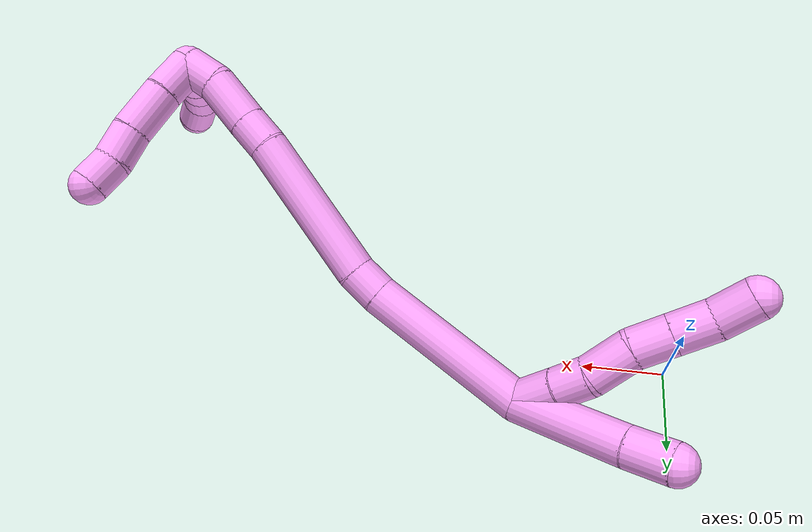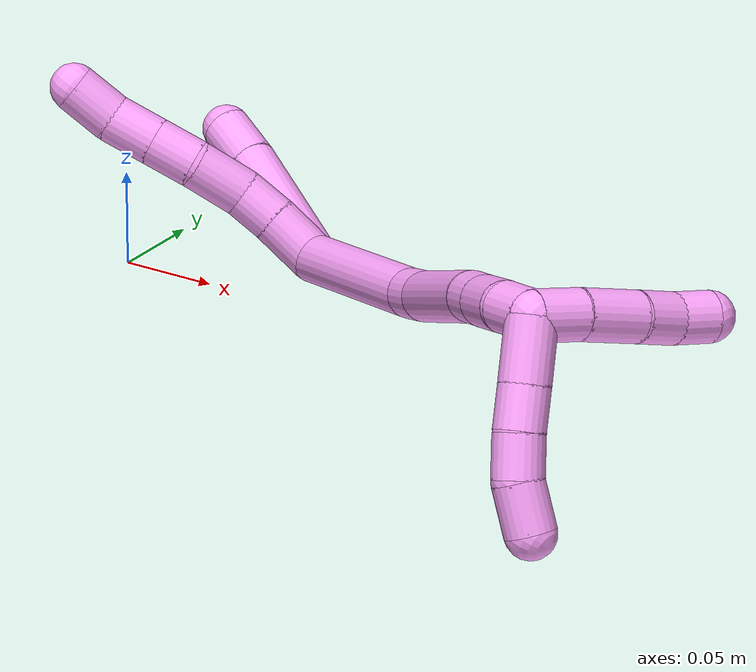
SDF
<sdf version="1.7">
 <world name="default">
  <model name="4">
   <static>0</static>
   <link name="4">
    <collision name="collision-cylinder-e_1_2_8">
     <pose>0.004533 -0.002907 -0.012921 2.92027 0.329762 1.96403</pose>
     <geometry><cylinder><radius>0.0125</radius><length>0.027997</length></cylinder></geometry>
     <surface>
      <friction><ode><mu>1.16</mu><mu2>1.16</mu2><slip1>0</slip1><slip2>0</slip2></ode></friction>
      <contact><ode><kp>1e+06</kp><kd>1</kd><max_vel>0</max_vel><min_depth>0.001</min_depth></ode></contact>
     </surface>
    </collision>
    <visual name="visual-cylinder-e_1_2_8">
     <pose>0.004533 -0.002907 -0.012921 2.92027 0.329762 1.96403</pose>
     <geometry><cylinder><radius>0.0125</radius><length>0.027997</length></cylinder></geometry>
     <material><ambient>1 0.65098 0.996078 1</ambient></material>
    </visual>
    <collision name="collision-cylinder-e_2_8_9">
     <pose>0.012837 -0.007317 -0.035481 2.98695 0.368869 2.35436</pose>
     <geometry><cylinder><radius>0.0125</radius><length>0.020918</length></cylinder></geometry>
     <surface>
      <friction><ode><mu>1.16</mu><mu2>1.16</mu2><slip1>0</slip1><slip2>0</slip2></ode></friction>
      <contact><ode><kp>1e+06</kp><kd>1</kd><max_vel>0</max_vel><min_depth>0.001</min_depth></ode></contact>
     </surface>
    </collision>
    <visual name="visual-cylinder-e_2_8_9">
     <pose>0.012837 -0.007317 -0.035481 2.98695 0.368869 2.35436</pose>
     <geometry><cylinder><radius>0.0125</radius><length>0.020918</length></cylinder></geometry>
     <material><ambient>1 0.65098 0.996078 1</ambient></material>
    </visual>
    <collision name="collision-cylinder-e_3_9_10">
     <pose>0.024825 -0.00986 -0.056776 3.0526 0.61221 2.86165</pose>
     <geometry><cylinder><radius>0.0125</radius><length>0.028597</length></cylinder></geometry>
     <surface>
      <friction><ode><mu>1.16</mu><mu2>1.16</mu2><slip1>0</slip1><slip2>0</slip2></ode></friction>
      <contact><ode><kp>1e+06</kp><kd>1</kd><max_vel>0</max_vel><min_depth>0.001</min_depth></ode></contact>
     </surface>
    </collision>
    <visual name="visual-cylinder-e_3_9_10">
     <pose>0.024825 -0.00986 -0.056776 3.0526 0.61221 2.86165</pose>
     <geometry><cylinder><radius>0.0125</radius><length>0.028597</length></cylinder></geometry>
     <material><ambient>1 0.65098 0.996078 1</ambient></material>
    </visual>
    <collision name="collision-cylinder-e_4_10_11">
     <pose>0.037685 -0.010411 -0.079124 -3.09589 0.409239 -2.92223</pose>
     <geometry><cylinder><radius>0.0125</radius><length>0.023335</length></cylinder></geometry>
     <surface>
      <friction><ode><mu>1.16</mu><mu2>1.16</mu2><slip1>0</slip1><slip2>0</slip2></ode></friction>
      <contact><ode><kp>1e+06</kp><kd>1</kd><max_vel>0</max_vel><min_depth>0.001</min_depth></ode></contact>
     </surface>
    </collision>
    <visual name="visual-cylinder-e_4_10_11">
     <pose>0.037685 -0.010411 -0.079124 -3.09589 0.409239 -2.92223</pose>
     <geometry><cylinder><radius>0.0125</radius><length>0.023335</length></cylinder></geometry>
     <material><ambient>1 0.65098 0.996078 1</ambient></material>
    </visual>
    <collision name="collision-cylinder-e_5_11_12">
     <pose>0.04721 -0.009406 -0.101048 -3.09569 0.409714 -2.92152</pose>
     <geometry><cylinder><radius>0.0125</radius><length>0.024513</length></cylinder></geometry>
     <surface>
      <friction><ode><mu>1.16</mu><mu2>1.16</mu2><slip1>0</slip1><slip2>0</slip2></ode></friction>
      <contact><ode><kp>1e+06</kp><kd>1</kd><max_vel>0</max_vel><min_depth>0.001</min_depth></ode></contact>
     </surface>
    </collision>
    <visual name="visual-cylinder-e_5_11_12">
     <pose>0.04721 -0.009406 -0.101048 -3.09569 0.409714 -2.92152</pose>
     <geometry><cylinder><radius>0.0125</radius><length>0.024513</length></cylinder></geometry>
     <material><ambient>1 0.65098 0.996078 1</ambient></material>
    </visual>
    <collision name="collision-cylinder-e_6_12_6">
     <pose>0.05784 -0.010981 -0.122972 2.9485 0.485345 2.39575</pose>
     <geometry><cylinder><radius>0.0125</radius><length>0.024639</length></cylinder></geometry>
     <surface>
      <friction><ode><mu>1.16</mu><mu2>1.16</mu2><slip1>0</slip1><slip2>0</slip2></ode></friction>
      <contact><ode><kp>1e+06</kp><kd>1</kd><max_vel>0</max_vel><min_depth>0.001</min_depth></ode></contact>
     </surface>
    </collision>
    <visual name="visual-cylinder-e_6_12_6">
     <pose>0.05784 -0.010981 -0.122972 2.9485 0.485345 2.39575</pose>
     <geometry><cylinder><radius>0.0125</radius><length>0.024639</length></cylinder></geometry>
     <material><ambient>1 0.65098 0.996078 1</ambient></material>
    </visual>
    <collision name="collision-cylinder-e_1_2_13">
     <pose>-0.010612 -0.005169 -0.034504 2.99289 -0.295284 -2.21292</pose>
     <geometry><cylinder><radius>0.0125</radius><length>0.072934</length></cylinder></geometry>
     <surface>
      <friction><ode><mu>1.16</mu><mu2>1.16</mu2><slip1>0</slip1><slip2>0</slip2></ode></friction>
      <contact><ode><kp>1e+06</kp><kd>1</kd><max_vel>0</max_vel><min_depth>0.001</min_depth></ode></contact>
     </surface>
    </collision>
    <visual name="visual-cylinder-e_1_2_13">
     <pose>-0.010612 -0.005169 -0.034504 2.99289 -0.295284 -2.21292</pose>
     <geometry><cylinder><radius>0.0125</radius><length>0.072934</length></cylinder></geometry>
     <material><ambient>1 0.65098 0.996078 1</ambient></material>
    </visual>
    <collision name="collision-cylinder-e_2_13_5">
     <pose>-0.024615 -0.01157 -0.082051 3.04742 -0.253234 -2.43255</pose>
     <geometry><cylinder><radius>0.0125</radius><length>0.027066</length></cylinder></geometry>
     <surface>
      <friction><ode><mu>1.16</mu><mu2>1.16</mu2><slip1>0</slip1><slip2>0</slip2></ode></friction>
      <contact><ode><kp>1e+06</kp><kd>1</kd><max_vel>0</max_vel><min_depth>0.001</min_depth></ode></contact>
     </surface>
    </collision>
    <visual name="visual-cylinder-e_2_13_5">
     <pose>-0.024615 -0.01157 -0.082051 3.04742 -0.253234 -2.43255</pose>
     <geometry><cylinder><radius>0.0125</radius><length>0.027066</length></cylinder></geometry>
     <material><ambient>1 0.65098 0.996078 1</ambient></material>
    </visual>
    <collision name="collision-cylinder-e_1_2_14">
     <pose>0.027021 -0.01998 0.040844 0.454951 0.536207 0.127013</pose>
     <geometry><cylinder><radius>0.0125</radius><length>0.105783</length></cylinder></geometry>
     <surface>
      <friction><ode><mu>1.16</mu><mu2>1.16</mu2><slip1>0</slip1><slip2>0</slip2></ode></friction>
      <contact><ode><kp>1e+06</kp><kd>1</kd><max_vel>0</max_vel><min_depth>0.001</min_depth></ode></contact>
     </surface>
    </collision>
    <visual name="visual-cylinder-e_1_2_14">
     <pose>0.027021 -0.01998 0.040844 0.454951 0.536207 0.127013</pose>
     <geometry><cylinder><radius>0.0125</radius><length>0.105783</length></cylinder></geometry>
     <material><ambient>1 0.65098 0.996078 1</ambient></material>
    </visual>
    <collision name="collision-cylinder-e_2_14_15">
     <pose>0.060087 -0.044228 0.088544 0.55677 0.642414 0.189622</pose>
     <geometry><cylinder><radius>0.0125</radius><length>0.020177</length></cylinder></geometry>
     <surface>
      <friction><ode><mu>1.16</mu><mu2>1.16</mu2><slip1>0</slip1><slip2>0</slip2></ode></friction>
      <contact><ode><kp>1e+06</kp><kd>1</kd><max_vel>0</max_vel><min_depth>0.001</min_depth></ode></contact>
     </surface>
    </collision>
    <visual name="visual-cylinder-e_2_14_15">
     <pose>0.060087 -0.044228 0.088544 0.55677 0.642414 0.189622</pose>
     <geometry><cylinder><radius>0.0125</radius><length>0.020177</length></cylinder></geometry>
     <material><ambient>1 0.65098 0.996078 1</ambient></material>
    </visual>
    <collision name="collision-cylinder-e_3_15_16">
     <pose>0.101109 -0.069502 0.121954 0.669296 0.801696 0.292622</pose>
     <geometry><cylinder><radius>0.0125</radius><length>0.09736</length></cylinder></geometry>
     <surface>
      <friction><ode><mu>1.16</mu><mu2>1.16</mu2><slip1>0</slip1><slip2>0</slip2></ode></friction>
      <contact><ode><kp>1e+06</kp><kd>1</kd><max_vel>0</max_vel><min_depth>0.001</min_depth></ode></contact>
     </surface>
    </collision>
    <visual name="visual-cylinder-e_3_15_16">
     <pose>0.101109 -0.069502 0.121954 0.669296 0.801696 0.292622</pose>
     <geometry><cylinder><radius>0.0125</radius><length>0.09736</length></cylinder></geometry>
     <material><ambient>1 0.65098 0.996078 1</ambient></material>
    </visual>
    <collision name="collision-cylinder-e_4_16_17">
     <pose>0.143026 -0.094445 0.15519 0.532429 0.729705 0.207559</pose>
     <geometry><cylinder><radius>0.0125</radius><length>0.020815</length></cylinder></geometry>
     <surface>
      <friction><ode><mu>1.16</mu><mu2>1.16</mu2><slip1>0</slip1><slip2>0</slip2></ode></friction>
      <contact><ode><kp>1e+06</kp><kd>1</kd><max_vel>0</max_vel><min_depth>0.001</min_depth></ode></contact>
     </surface>
    </collision>
    <visual name="visual-cylinder-e_4_16_17">
     <pose>0.143026 -0.094445 0.15519 0.532429 0.729705 0.207559</pose>
     <geometry><cylinder><radius>0.0125</radius><length>0.020815</length></cylinder></geometry>
     <material><ambient>1 0.65098 0.996078 1</ambient></material>
    </visual>
    <collision name="collision-cylinder-e_5_17_18">
     <pose>0.161309 -0.104762 0.172113 0.557108 0.754693 0.225734</pose>
     <geometry><cylinder><radius>0.0125</radius><length>0.033122</length></cylinder></geometry>
     <surface>
      <friction><ode><mu>1.16</mu><mu2>1.16</mu2><slip1>0</slip1><slip2>0</slip2></ode></friction>
      <contact><ode><kp>1e+06</kp><kd>1</kd><max_vel>0</max_vel><min_depth>0.001</min_depth></ode></contact>
     </surface>
    </collision>
    <visual name="visual-cylinder-e_5_17_18">
     <pose>0.161309 -0.104762 0.172113 0.557108 0.754693 0.225734</pose>
     <geometry><cylinder><radius>0.0125</radius><length>0.033122</length></cylinder></geometry>
     <material><ambient>1 0.65098 0.996078 1</ambient></material>
    </visual>
    <collision name="collision-cylinder-e_6_18_1">
     <pose>0.17784 -0.115512 0.191482 0.446592 0.473451 0.109457</pose>
     <geometry><cylinder><radius>0.0125</radius><length>0.022743</length></cylinder></geometry>
     <surface>
      <friction><ode><mu>1.16</mu><mu2>1.16</mu2><slip1>0</slip1><slip2>0</slip2></ode></friction>
      <contact><ode><kp>1e+06</kp><kd>1</kd><max_vel>0</max_vel><min_depth>0.001</min_depth></ode></contact>
     </surface>
    </collision>
    <visual name="visual-cylinder-e_6_18_1">
     <pose>0.17784 -0.115512 0.191482 0.446592 0.473451 0.109457</pose>
     <geometry><cylinder><radius>0.0125</radius><length>0.022743</length></cylinder></geometry>
     <material><ambient>1 0.65098 0.996078 1</ambient></material>
    </visual>
    <collision name="collision-cylinder-e_1_1_19">
     <pose>0.185405 -0.106631 0.208993 -1.00672 0.150677 -0.083084</pose>
     <geometry><cylinder><radius>0.0125</radius><length>0.031722</length></cylinder></geometry>
     <surface>
      <friction><ode><mu>1.16</mu><mu2>1.16</mu2><slip1>0</slip1><slip2>0</slip2></ode></friction>
      <contact><ode><kp>1e+06</kp><kd>1</kd><max_vel>0</max_vel><min_depth>0.001</min_depth></ode></contact>
     </surface>
    </collision>
    <visual name="visual-cylinder-e_1_1_19">
     <pose>0.185405 -0.106631 0.208993 -1.00672 0.150677 -0.083084</pose>
     <geometry><cylinder><radius>0.0125</radius><length>0.031722</length></cylinder></geometry>
     <material><ambient>1 0.65098 0.996078 1</ambient></material>
    </visual>
    <collision name="collision-cylinder-e_2_19_20">
     <pose>0.189705 -0.084397 0.22316 -0.998772 0.177723 -0.097129</pose>
     <geometry><cylinder><radius>0.0125</radius><length>0.021706</length></cylinder></geometry>
     <surface>
      <friction><ode><mu>1.16</mu><mu2>1.16</mu2><slip1>0</slip1><slip2>0</slip2></ode></friction>
      <contact><ode><kp>1e+06</kp><kd>1</kd><max_vel>0</max_vel><min_depth>0.001</min_depth></ode></contact>
     </surface>
    </collision>
    <visual name="visual-cylinder-e_2_19_20">
     <pose>0.189705 -0.084397 0.22316 -0.998772 0.177723 -0.097129</pose>
     <geometry><cylinder><radius>0.0125</radius><length>0.021706</length></cylinder></geometry>
     <material><ambient>1 0.65098 0.996078 1</ambient></material>
    </visual>
    <collision name="collision-cylinder-e_3_20_21">
     <pose>0.192525 -0.066526 0.235262 -0.95279 0.08242 -0.042549</pose>
     <geometry><cylinder><radius>0.0125</radius><length>0.021889</length></cylinder></geometry>
     <surface>
      <friction><ode><mu>1.16</mu><mu2>1.16</mu2><slip1>0</slip1><slip2>0</slip2></ode></friction>
      <contact><ode><kp>1e+06</kp><kd>1</kd><max_vel>0</max_vel><min_depth>0.001</min_depth></ode></contact>
     </surface>
    </collision>
    <visual name="visual-cylinder-e_3_20_21">
     <pose>0.192525 -0.066526 0.235262 -0.95279 0.08242 -0.042549</pose>
     <geometry><cylinder><radius>0.0125</radius><length>0.021889</length></cylinder></geometry>
     <material><ambient>1 0.65098 0.996078 1</ambient></material>
    </visual>
    <collision name="collision-cylinder-e_4_21_4">
     <pose>0.191684 -0.049079 0.250302 -0.775962 -0.141594 0.05795</pose>
     <geometry><cylinder><radius>0.0125</radius><length>0.024683</length></cylinder></geometry>
     <surface>
      <friction><ode><mu>1.16</mu><mu2>1.16</mu2><slip1>0</slip1><slip2>0</slip2></ode></friction>
      <contact><ode><kp>1e+06</kp><kd>1</kd><max_vel>0</max_vel><min_depth>0.001</min_depth></ode></contact>
     </surface>
    </collision>
    <visual name="visual-cylinder-e_4_21_4">
     <pose>0.191684 -0.049079 0.250302 -0.775962 -0.141594 0.05795</pose>
     <geometry><cylinder><radius>0.0125</radius><length>0.024683</length></cylinder></geometry>
     <material><ambient>1 0.65098 0.996078 1</ambient></material>
    </visual>
    <collision name="collision-cylinder-e_1_1_22">
     <pose>0.171905 -0.123241 0.20551 0.600816 -1.08013 -0.367257</pose>
     <geometry><cylinder><radius>0.0125</radius><length>0.025214</length></cylinder></geometry>
     <surface>
      <friction><ode><mu>1.16</mu><mu2>1.16</mu2><slip1>0</slip1><slip2>0</slip2></ode></friction>
      <contact><ode><kp>1e+06</kp><kd>1</kd><max_vel>0</max_vel><min_depth>0.001</min_depth></ode></contact>
     </surface>
    </collision>
    <visual name="visual-cylinder-e_1_1_22">
     <pose>0.171905 -0.123241 0.20551 0.600816 -1.08013 -0.367257</pose>
     <geometry><cylinder><radius>0.0125</radius><length>0.025214</length></cylinder></geometry>
     <material><ambient>1 0.65098 0.996078 1</ambient></material>
    </visual>
    <collision name="collision-cylinder-e_2_22_23">
     <pose>0.146414 -0.129662 0.216648 0.456362 -1.12041 -0.289286</pose>
     <geometry><cylinder><radius>0.0125</radius><length>0.031927</length></cylinder></geometry>
     <surface>
      <friction><ode><mu>1.16</mu><mu2>1.16</mu2><slip1>0</slip1><slip2>0</slip2></ode></friction>
      <contact><ode><kp>1e+06</kp><kd>1</kd><max_vel>0</max_vel><min_depth>0.001</min_depth></ode></contact>
     </surface>
    </collision>
    <visual name="visual-cylinder-e_2_22_23">
     <pose>0.146414 -0.129662 0.216648 0.456362 -1.12041 -0.289286</pose>
     <geometry><cylinder><radius>0.0125</radius><length>0.031927</length></cylinder></geometry>
     <material><ambient>1 0.65098 0.996078 1</ambient></material>
    </visual>
    <collision name="collision-cylinder-e_3_23_24">
     <pose>0.121279 -0.134045 0.226214 0.377706 -1.24963 -0.273962</pose>
     <geometry><cylinder><radius>0.0125</radius><length>0.022688</length></cylinder></geometry>
     <surface>
      <friction><ode><mu>1.16</mu><mu2>1.16</mu2><slip1>0</slip1><slip2>0</slip2></ode></friction>
      <contact><ode><kp>1e+06</kp><kd>1</kd><max_vel>0</max_vel><min_depth>0.001</min_depth></ode></contact>
     </surface>
    </collision>
    <visual name="visual-cylinder-e_3_23_24">
     <pose>0.121279 -0.134045 0.226214 0.377706 -1.24963 -0.273962</pose>
     <geometry><cylinder><radius>0.0125</radius><length>0.022688</length></cylinder></geometry>
     <material><ambient>1 0.65098 0.996078 1</ambient></material>
    </visual>
    <collision name="collision-cylinder-e_4_24_3">
     <pose>0.101749 -0.138325 0.23356 0.634951 -1.05333 -0.377564</pose>
     <geometry><cylinder><radius>0.0125</radius><length>0.020172</length></cylinder></geometry>
     <surface>
      <friction><ode><mu>1.16</mu><mu2>1.16</mu2><slip1>0</slip1><slip2>0</slip2></ode></friction>
      <contact><ode><kp>1e+06</kp><kd>1</kd><max_vel>0</max_vel><min_depth>0.001</min_depth></ode></contact>
     </surface>
    </collision>
    <visual name="visual-cylinder-e_4_24_3">
     <pose>0.101749 -0.138325 0.23356 0.634951 -1.05333 -0.377564</pose>
     <geometry><cylinder><radius>0.0125</radius><length>0.020172</length></cylinder></geometry>
     <material><ambient>1 0.65098 0.996078 1</ambient></material>
    </visual>
    <collision name="collision-sphere-3">
     <pose>0.092984 -0.141284 0.237577 0 -0 0</pose>
     <geometry><sphere><radius>0.0125</radius></sphere></geometry>
     <surface>
      <friction><ode><mu>1.16</mu><mu2>1.16</mu2><slip1>0</slip1><slip2>0</slip2></ode></friction>
      <contact><ode><kp>1e+06</kp><kd>1</kd><max_vel>0</max_vel><min_depth>0.001</min_depth></ode></contact>
     </surface>
    </collision>
    <visual name="visual-sphere-3">
     <pose>0.092984 -0.141284 0.237577 0 -0 0</pose>
     <geometry><sphere><radius>0.0125</radius></sphere></geometry>
     <material><ambient>1 0.65098 0.996078 1</ambient></material>
    </visual>
    <collision name="collision-sphere-24">
     <pose>0.110515 -0.135366 0.229543 0 -0 0</pose>
     <geometry><sphere><radius>0.0125</radius></sphere></geometry>
     <surface>
      <friction><ode><mu>1.16</mu><mu2>1.16</mu2><slip1>0</slip1><slip2>0</slip2></ode></friction>
      <contact><ode><kp>1e+06</kp><kd>1</kd><max_vel>0</max_vel><min_depth>0.001</min_depth></ode></contact>
     </surface>
    </collision>
    <visual name="visual-sphere-24">
     <pose>0.110515 -0.135366 0.229543 0 -0 0</pose>
     <geometry><sphere><radius>0.0125</radius></sphere></geometry>
     <material><ambient>1 0.65098 0.996078 1</ambient></material>
    </visual>
    <collision name="collision-sphere-23">
     <pose>0.132042 -0.132724 0.222886 0 -0 0</pose>
     <geometry><sphere><radius>0.0125</radius></sphere></geometry>
     <surface>
      <friction><ode><mu>1.16</mu><mu2>1.16</mu2><slip1>0</slip1><slip2>0</slip2></ode></friction>
      <contact><ode><kp>1e+06</kp><kd>1</kd><max_vel>0</max_vel><min_depth>0.001</min_depth></ode></contact>
     </surface>
    </collision>
    <visual name="visual-sphere-23">
     <pose>0.132042 -0.132724 0.222886 0 -0 0</pose>
     <geometry><sphere><radius>0.0125</radius></sphere></geometry>
     <material><ambient>1 0.65098 0.996078 1</ambient></material>
    </visual>
    <collision name="collision-sphere-22">
     <pose>0.160785 -0.1266 0.21041 0 -0 0</pose>
     <geometry><sphere><radius>0.0125</radius></sphere></geometry>
     <surface>
      <friction><ode><mu>1.16</mu><mu2>1.16</mu2><slip1>0</slip1><slip2>0</slip2></ode></friction>
      <contact><ode><kp>1e+06</kp><kd>1</kd><max_vel>0</max_vel><min_depth>0.001</min_depth></ode></contact>
     </surface>
    </collision>
    <visual name="visual-sphere-22">
     <pose>0.160785 -0.1266 0.21041 0 -0 0</pose>
     <geometry><sphere><radius>0.0125</radius></sphere></geometry>
     <material><ambient>1 0.65098 0.996078 1</ambient></material>
    </visual>
    <collision name="collision-sphere-4">
     <pose>0.189942 -0.040521 0.259023 0 -0 0</pose>
     <geometry><sphere><radius>0.0125</radius></sphere></geometry>
     <surface>
      <friction><ode><mu>1.16</mu><mu2>1.16</mu2><slip1>0</slip1><slip2>0</slip2></ode></friction>
      <contact><ode><kp>1e+06</kp><kd>1</kd><max_vel>0</max_vel><min_depth>0.001</min_depth></ode></contact>
     </surface>
    </collision>
    <visual name="visual-sphere-4">
     <pose>0.189942 -0.040521 0.259023 0 -0 0</pose>
     <geometry><sphere><radius>0.0125</radius></sphere></geometry>
     <material><ambient>1 0.65098 0.996078 1</ambient></material>
    </visual>
    <collision name="collision-sphere-21">
     <pose>0.193426 -0.057636 0.241582 0 -0 0</pose>
     <geometry><sphere><radius>0.0125</radius></sphere></geometry>
     <surface>
      <friction><ode><mu>1.16</mu><mu2>1.16</mu2><slip1>0</slip1><slip2>0</slip2></ode></friction>
      <contact><ode><kp>1e+06</kp><kd>1</kd><max_vel>0</max_vel><min_depth>0.001</min_depth></ode></contact>
     </surface>
    </collision>
    <visual name="visual-sphere-21">
     <pose>0.193426 -0.057636 0.241582 0 -0 0</pose>
     <geometry><sphere><radius>0.0125</radius></sphere></geometry>
     <material><ambient>1 0.65098 0.996078 1</ambient></material>
    </visual>
    <collision name="collision-sphere-20">
     <pose>0.191624 -0.075416 0.228942 0 -0 0</pose>
     <geometry><sphere><radius>0.0125</radius></sphere></geometry>
     <surface>
      <friction><ode><mu>1.16</mu><mu2>1.16</mu2><slip1>0</slip1><slip2>0</slip2></ode></friction>
      <contact><ode><kp>1e+06</kp><kd>1</kd><max_vel>0</max_vel><min_depth>0.001</min_depth></ode></contact>
     </surface>
    </collision>
    <visual name="visual-sphere-20">
     <pose>0.191624 -0.075416 0.228942 0 -0 0</pose>
     <geometry><sphere><radius>0.0125</radius></sphere></geometry>
     <material><ambient>1 0.65098 0.996078 1</ambient></material>
    </visual>
    <collision name="collision-sphere-12">
     <pose>0.052092 -0.00889 -0.112278 0 -0 0</pose>
     <geometry><sphere><radius>0.0125</radius></sphere></geometry>
     <surface>
      <friction><ode><mu>1.16</mu><mu2>1.16</mu2><slip1>0</slip1><slip2>0</slip2></ode></friction>
      <contact><ode><kp>1e+06</kp><kd>1</kd><max_vel>0</max_vel><min_depth>0.001</min_depth></ode></contact>
     </surface>
    </collision>
    <visual name="visual-sphere-12">
     <pose>0.052092 -0.00889 -0.112278 0 -0 0</pose>
     <geometry><sphere><radius>0.0125</radius></sphere></geometry>
     <material><ambient>1 0.65098 0.996078 1</ambient></material>
    </visual>
    <collision name="collision-sphere-11">
     <pose>0.042328 -0.009922 -0.089817 0 -0 0</pose>
     <geometry><sphere><radius>0.0125</radius></sphere></geometry>
     <surface>
      <friction><ode><mu>1.16</mu><mu2>1.16</mu2><slip1>0</slip1><slip2>0</slip2></ode></friction>
      <contact><ode><kp>1e+06</kp><kd>1</kd><max_vel>0</max_vel><min_depth>0.001</min_depth></ode></contact>
     </surface>
    </collision>
    <visual name="visual-sphere-11">
     <pose>0.042328 -0.009922 -0.089817 0 -0 0</pose>
     <geometry><sphere><radius>0.0125</radius></sphere></geometry>
     <material><ambient>1 0.65098 0.996078 1</ambient></material>
    </visual>
    <collision name="collision-sphere-10">
     <pose>0.033042 -0.0109 -0.068431 0 -0 0</pose>
     <geometry><sphere><radius>0.0125</radius></sphere></geometry>
     <surface>
      <friction><ode><mu>1.16</mu><mu2>1.16</mu2><slip1>0</slip1><slip2>0</slip2></ode></friction>
      <contact><ode><kp>1e+06</kp><kd>1</kd><max_vel>0</max_vel><min_depth>0.001</min_depth></ode></contact>
     </surface>
    </collision>
    <visual name="visual-sphere-10">
     <pose>0.033042 -0.0109 -0.068431 0 -0 0</pose>
     <geometry><sphere><radius>0.0125</radius></sphere></geometry>
     <material><ambient>1 0.65098 0.996078 1</ambient></material>
    </visual>
    <collision name="collision-sphere-9">
     <pose>0.016608 -0.00882 -0.045121 0 -0 0</pose>
     <geometry><sphere><radius>0.0125</radius></sphere></geometry>
     <surface>
      <friction><ode><mu>1.16</mu><mu2>1.16</mu2><slip1>0</slip1><slip2>0</slip2></ode></friction>
      <contact><ode><kp>1e+06</kp><kd>1</kd><max_vel>0</max_vel><min_depth>0.001</min_depth></ode></contact>
     </surface>
    </collision>
    <visual name="visual-sphere-9">
     <pose>0.016608 -0.00882 -0.045121 0 -0 0</pose>
     <geometry><sphere><radius>0.0125</radius></sphere></geometry>
     <material><ambient>1 0.65098 0.996078 1</ambient></material>
    </visual>
    <collision name="collision-sphere-2">
     <geometry><sphere><radius>0.0125</radius></sphere></geometry>
     <surface>
      <friction><ode><mu>1.16</mu><mu2>1.16</mu2><slip1>0</slip1><slip2>0</slip2></ode></friction>
      <contact><ode><kp>1e+06</kp><kd>1</kd><max_vel>0</max_vel><min_depth>0.001</min_depth></ode></contact>
     </surface>
    </collision>
    <visual name="visual-sphere-2">
     <geometry><sphere><radius>0.0125</radius></sphere></geometry>
     <material><ambient>1 0.65098 0.996078 1</ambient></material>
    </visual>
    <collision name="collision-sphere-19">
     <pose>0.187786 -0.093379 0.217377 0 -0 0</pose>
     <geometry><sphere><radius>0.0125</radius></sphere></geometry>
     <surface>
      <friction><ode><mu>1.16</mu><mu2>1.16</mu2><slip1>0</slip1><slip2>0</slip2></ode></friction>
      <contact><ode><kp>1e+06</kp><kd>1</kd><max_vel>0</max_vel><min_depth>0.001</min_depth></ode></contact>
     </surface>
    </collision>
    <visual name="visual-sphere-19">
     <pose>0.187786 -0.093379 0.217377 0 -0 0</pose>
     <geometry><sphere><radius>0.0125</radius></sphere></geometry>
     <material><ambient>1 0.65098 0.996078 1</ambient></material>
    </visual>
    <collision name="collision-sphere-8">
     <pose>0.009066 -0.005815 -0.025842 0 -0 0</pose>
     <geometry><sphere><radius>0.0125</radius></sphere></geometry>
     <surface>
      <friction><ode><mu>1.16</mu><mu2>1.16</mu2><slip1>0</slip1><slip2>0</slip2></ode></friction>
      <contact><ode><kp>1e+06</kp><kd>1</kd><max_vel>0</max_vel><min_depth>0.001</min_depth></ode></contact>
     </surface>
    </collision>
    <visual name="visual-sphere-8">
     <pose>0.009066 -0.005815 -0.025842 0 -0 0</pose>
     <geometry><sphere><radius>0.0125</radius></sphere></geometry>
     <material><ambient>1 0.65098 0.996078 1</ambient></material>
    </visual>
    <collision name="collision-sphere-6">
     <pose>0.063587 -0.013072 -0.133667 0 -0 0</pose>
     <geometry><sphere><radius>0.0125</radius></sphere></geometry>
     <surface>
      <friction><ode><mu>1.16</mu><mu2>1.16</mu2><slip1>0</slip1><slip2>0</slip2></ode></friction>
      <contact><ode><kp>1e+06</kp><kd>1</kd><max_vel>0</max_vel><min_depth>0.001</min_depth></ode></contact>
     </surface>
    </collision>
    <visual name="visual-sphere-6">
     <pose>0.063587 -0.013072 -0.133667 0 -0 0</pose>
     <geometry><sphere><radius>0.0125</radius></sphere></geometry>
     <material><ambient>1 0.65098 0.996078 1</ambient></material>
    </visual>
    <collision name="collision-sphere-13">
     <pose>-0.021225 -0.010338 -0.069007 0 -0 0</pose>
     <geometry><sphere><radius>0.0125</radius></sphere></geometry>
     <surface>
      <friction><ode><mu>1.16</mu><mu2>1.16</mu2><slip1>0</slip1><slip2>0</slip2></ode></friction>
      <contact><ode><kp>1e+06</kp><kd>1</kd><max_vel>0</max_vel><min_depth>0.001</min_depth></ode></contact>
     </surface>
    </collision>
    <visual name="visual-sphere-13">
     <pose>-0.021225 -0.010338 -0.069007 0 -0 0</pose>
     <geometry><sphere><radius>0.0125</radius></sphere></geometry>
     <material><ambient>1 0.65098 0.996078 1</ambient></material>
    </visual>
    <collision name="collision-sphere-5">
     <pose>-0.028006 -0.012802 -0.095094 0 -0 0</pose>
     <geometry><sphere><radius>0.0125</radius></sphere></geometry>
     <surface>
      <friction><ode><mu>1.16</mu><mu2>1.16</mu2><slip1>0</slip1><slip2>0</slip2></ode></friction>
      <contact><ode><kp>1e+06</kp><kd>1</kd><max_vel>0</max_vel><min_depth>0.001</min_depth></ode></contact>
     </surface>
    </collision>
    <visual name="visual-sphere-5">
     <pose>-0.028006 -0.012802 -0.095094 0 -0 0</pose>
     <geometry><sphere><radius>0.0125</radius></sphere></geometry>
     <material><ambient>1 0.65098 0.996078 1</ambient></material>
    </visual>
    <collision name="collision-sphere-14">
     <pose>0.054042 -0.039959 0.081687 0 -0 0</pose>
     <geometry><sphere><radius>0.0125</radius></sphere></geometry>
     <surface>
      <friction><ode><mu>1.16</mu><mu2>1.16</mu2><slip1>0</slip1><slip2>0</slip2></ode></friction>
      <contact><ode><kp>1e+06</kp><kd>1</kd><max_vel>0</max_vel><min_depth>0.001</min_depth></ode></contact>
     </surface>
    </collision>
    <visual name="visual-sphere-14">
     <pose>0.054042 -0.039959 0.081687 0 -0 0</pose>
     <geometry><sphere><radius>0.0125</radius></sphere></geometry>
     <material><ambient>1 0.65098 0.996078 1</ambient></material>
    </visual>
    <collision name="collision-sphere-15">
     <pose>0.066131 -0.048496 0.095402 0 -0 0</pose>
     <geometry><sphere><radius>0.0125</radius></sphere></geometry>
     <surface>
      <friction><ode><mu>1.16</mu><mu2>1.16</mu2><slip1>0</slip1><slip2>0</slip2></ode></friction>
      <contact><ode><kp>1e+06</kp><kd>1</kd><max_vel>0</max_vel><min_depth>0.001</min_depth></ode></contact>
     </surface>
    </collision>
    <visual name="visual-sphere-15">
     <pose>0.066131 -0.048496 0.095402 0 -0 0</pose>
     <geometry><sphere><radius>0.0125</radius></sphere></geometry>
     <material><ambient>1 0.65098 0.996078 1</ambient></material>
    </visual>
    <collision name="collision-sphere-16">
     <pose>0.136088 -0.090507 0.148506 0 -0 0</pose>
     <geometry><sphere><radius>0.0125</radius></sphere></geometry>
     <surface>
      <friction><ode><mu>1.16</mu><mu2>1.16</mu2><slip1>0</slip1><slip2>0</slip2></ode></friction>
      <contact><ode><kp>1e+06</kp><kd>1</kd><max_vel>0</max_vel><min_depth>0.001</min_depth></ode></contact>
     </surface>
    </collision>
    <visual name="visual-sphere-16">
     <pose>0.136088 -0.090507 0.148506 0 -0 0</pose>
     <geometry><sphere><radius>0.0125</radius></sphere></geometry>
     <material><ambient>1 0.65098 0.996078 1</ambient></material>
    </visual>
    <collision name="collision-sphere-17">
     <pose>0.149964 -0.098383 0.161873 0 -0 0</pose>
     <geometry><sphere><radius>0.0125</radius></sphere></geometry>
     <surface>
      <friction><ode><mu>1.16</mu><mu2>1.16</mu2><slip1>0</slip1><slip2>0</slip2></ode></friction>
      <contact><ode><kp>1e+06</kp><kd>1</kd><max_vel>0</max_vel><min_depth>0.001</min_depth></ode></contact>
     </surface>
    </collision>
    <visual name="visual-sphere-17">
     <pose>0.149964 -0.098383 0.161873 0 -0 0</pose>
     <geometry><sphere><radius>0.0125</radius></sphere></geometry>
     <material><ambient>1 0.65098 0.996078 1</ambient></material>
    </visual>
    <collision name="collision-sphere-18">
     <pose>0.172655 -0.111141 0.182353 0 -0 0</pose>
     <geometry><sphere><radius>0.0125</radius></sphere></geometry>
     <surface>
      <friction><ode><mu>1.16</mu><mu2>1.16</mu2><slip1>0</slip1><slip2>0</slip2></ode></friction>
      <contact><ode><kp>1e+06</kp><kd>1</kd><max_vel>0</max_vel><min_depth>0.001</min_depth></ode></contact>
     </surface>
    </collision>
    <visual name="visual-sphere-18">
     <pose>0.172655 -0.111141 0.182353 0 -0 0</pose>
     <geometry><sphere><radius>0.0125</radius></sphere></geometry>
     <material><ambient>1 0.65098 0.996078 1</ambient></material>
    </visual>
    <collision name="collision-sphere-1">
     <pose>0.183025 -0.119883 0.20061 0 -0 0</pose>
     <geometry><sphere><radius>0.0125</radius></sphere></geometry>
     <surface>
      <friction><ode><mu>1.16</mu><mu2>1.16</mu2><slip1>0</slip1><slip2>0</slip2></ode></friction>
      <contact><ode><kp>1e+06</kp><kd>1</kd><max_vel>0</max_vel><min_depth>0.001</min_depth></ode></contact>
     </surface>
    </collision>
    <visual name="visual-sphere-1">
     <pose>0.183025 -0.119883 0.20061 0 -0 0</pose>
     <geometry><sphere><radius>0.0125</radius></sphere></geometry>
     <material><ambient>1 0.65098 0.996078 1</ambient></material>
    </visual>
    <inertial>
     <pose>0.082885 -0.054329 0.081589 0 -0 0</pose>
     <mass>0.75</mass>
     <inertia><ixx>0.000144</ixx><ixy>0</ixy><ixz>0</ixz><iyy>0.00022</iyy><iyz>0</iyz><izz>-2e-05</izz></inertia>
    </inertial>
   </link>
   <pose>0.090806 0.034236 0.011491 -1.96627 -0.317411 -1.59055</pose>
  </model>
 </world>
</sdf>
